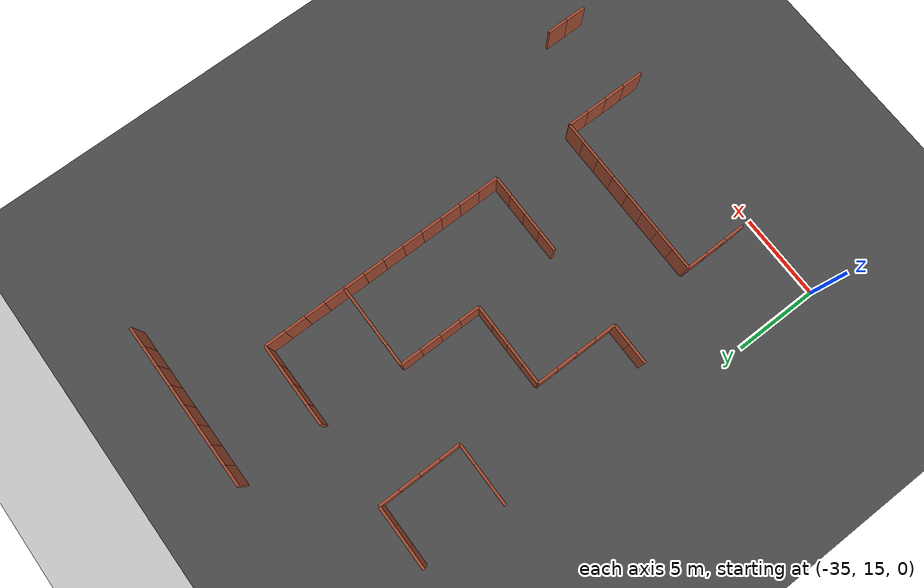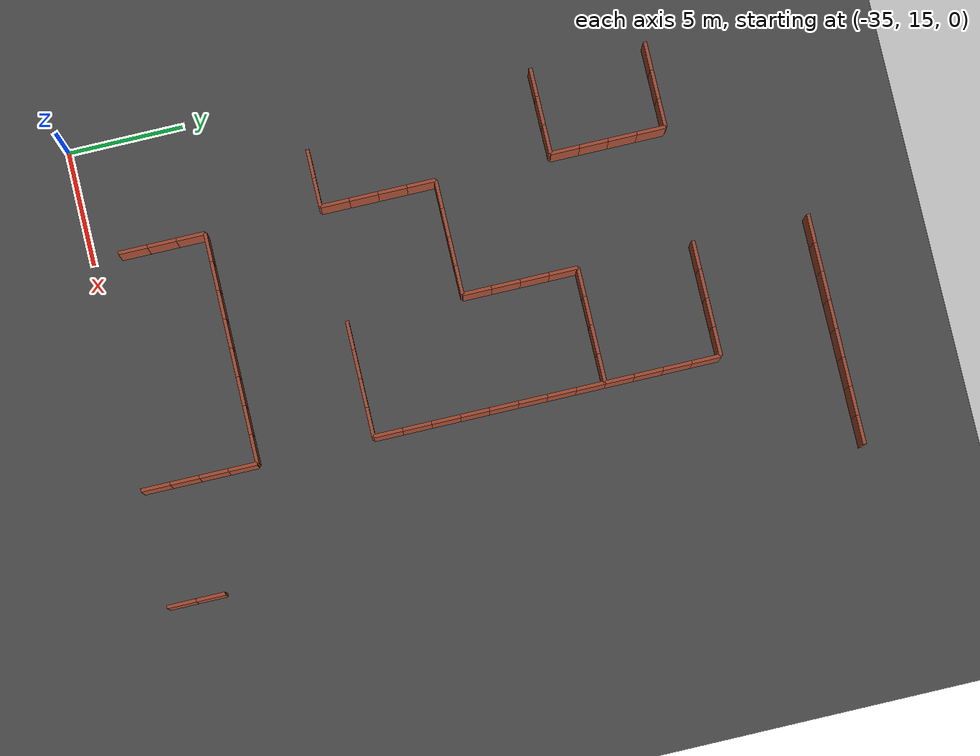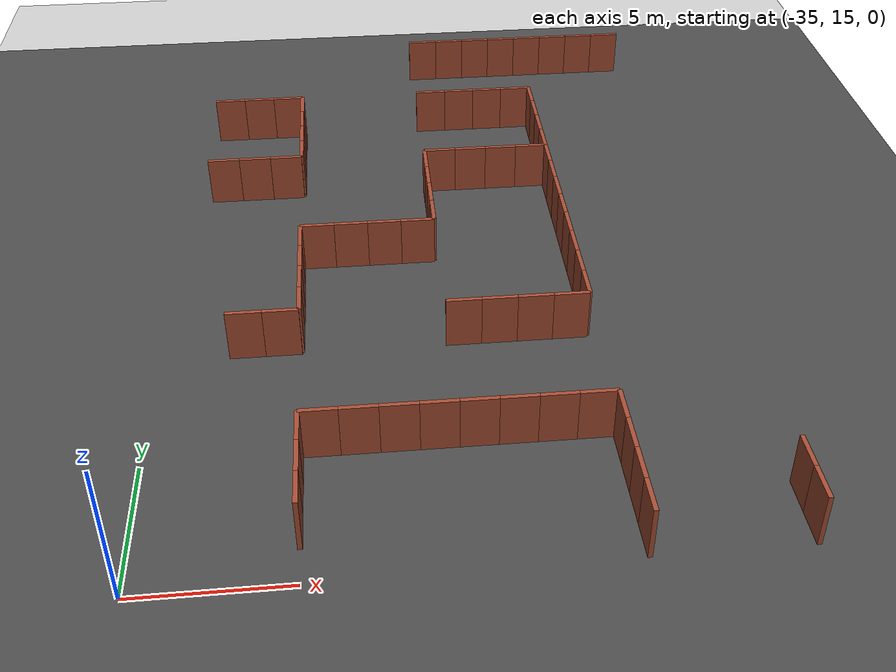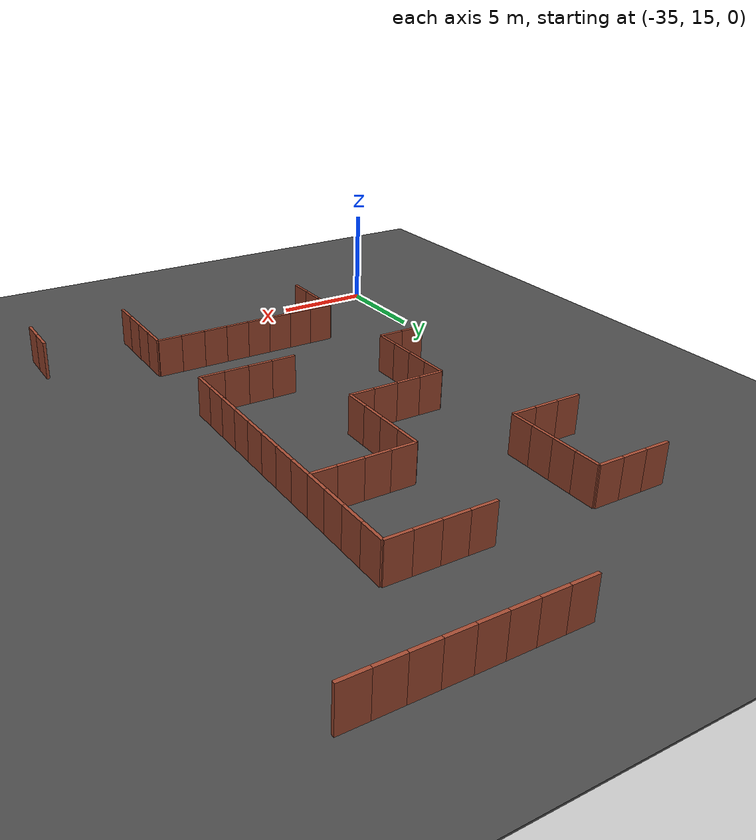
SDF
<sdf version="1.6">
 <world name="default">
  <model name="ground_plane">
   <static>1</static>
   <link name="link">
    <collision name="collision">
     <geometry><plane><normal>0 0 1</normal><size>100 100</size></plane></geometry>
     <surface><friction><ode><mu>100</mu><mu2>50</mu2></ode></friction></surface>
    </collision>
    <visual name="visual">
     <cast_shadows>0</cast_shadows>
     <geometry><plane><normal>0 0 1</normal><size>100 100</size></plane></geometry>
     <material>
      <script><uri>file://media/materials/scripts/gazebo.material</uri><name>Gazebo/Grey</name></script>
     </material>
    </visual>
   </link>
  </model>
  <model name="asphalt_plane">
   <static>1</static>
   <link name="link">
    <collision name="collision"><geometry><box><size>100 100 0.1</size></box></geometry></collision>
    <visual name="visual">
     <cast_shadows>0</cast_shadows>
     <geometry><box><size>100 100 0.1</size></box></geometry>
     <material>
      <script>
       <uri>model://asphalt_plane/materials/scripts</uri>
       <uri>model://asphalt_plane/materials/textures</uri>
       <name>vrc/asphalt</name>
      </script>
     </material>
    </visual>
   </link>
  </model>
  <model name="brick_wall_7_30_vertical1">
   <pose>-31.875 25 0 0 -0 0</pose>
   <link name="Wall_0">
    <collision name="Wall_0_Collision">
     <geometry><box><size>1.25 0.15 2</size></box></geometry>
     <pose>0 0 1 0 -0 0</pose>
    </collision>
    <visual name="Wall_0_Visual">
     <pose>0 0 1 0 -0 0</pose>
     <geometry><box><size>1.25 0.15 2</size></box></geometry>
     <material>
      <script><uri>file://media/materials/scripts/gazebo.material</uri><name>Gazebo/Bricks</name></script>
      <ambient>1 1 1 1</ambient>
     </material>
     <meta><layer>0</layer></meta>
    </visual>
   </link>
   <static>1</static>
  </model>
  <model name="brick_wall_7_34_vertical1">
   <pose>-31.875 35 0 0 -0 0</pose>
   <link name="Wall_0">
    <collision name="Wall_0_Collision">
     <geometry><box><size>1.25 0.15 2</size></box></geometry>
     <pose>0 0 1 0 -0 0</pose>
    </collision>
    <visual name="Wall_0_Visual">
     <pose>0 0 1 0 -0 0</pose>
     <geometry><box><size>1.25 0.15 2</size></box></geometry>
     <material>
      <script><uri>file://media/materials/scripts/gazebo.material</uri><name>Gazebo/Bricks</name></script>
      <ambient>1 1 1 1</ambient>
     </material>
     <meta><layer>0</layer></meta>
    </visual>
   </link>
   <static>1</static>
  </model>
  <model name="brick_wall_7_34_vertical2">
   <pose>-33.125 35 0 0 -0 0</pose>
   <link name="Wall_0">
    <collision name="Wall_0_Collision">
     <geometry><box><size>1.25 0.15 2</size></box></geometry>
     <pose>0 0 1 0 -0 0</pose>
    </collision>
    <visual name="Wall_0_Visual">
     <pose>0 0 1 0 -0 0</pose>
     <geometry><box><size>1.25 0.15 2</size></box></geometry>
     <material>
      <script><uri>file://media/materials/scripts/gazebo.material</uri><name>Gazebo/Bricks</name></script>
      <ambient>1 1 1 1</ambient>
     </material>
     <meta><layer>0</layer></meta>
    </visual>
   </link>
   <static>1</static>
  </model>
  <model name="brick_wall_7_36_vertical1">
   <pose>-31.875 40 0 0 -0 0</pose>
   <link name="Wall_0">
    <collision name="Wall_0_Collision">
     <geometry><box><size>1.25 0.15 2</size></box></geometry>
     <pose>0 0 1 0 -0 0</pose>
    </collision>
    <visual name="Wall_0_Visual">
     <pose>0 0 1 0 -0 0</pose>
     <geometry><box><size>1.25 0.15 2</size></box></geometry>
     <material>
      <script><uri>file://media/materials/scripts/gazebo.material</uri><name>Gazebo/Bricks</name></script>
      <ambient>1 1 1 1</ambient>
     </material>
     <meta><layer>0</layer></meta>
    </visual>
   </link>
   <static>1</static>
  </model>
  <model name="brick_wall_7_36_vertical2">
   <pose>-33.125 40 0 0 -0 0</pose>
   <link name="Wall_0">
    <collision name="Wall_0_Collision">
     <geometry><box><size>1.25 0.15 2</size></box></geometry>
     <pose>0 0 1 0 -0 0</pose>
    </collision>
    <visual name="Wall_0_Visual">
     <pose>0 0 1 0 -0 0</pose>
     <geometry><box><size>1.25 0.15 2</size></box></geometry>
     <material>
      <script><uri>file://media/materials/scripts/gazebo.material</uri><name>Gazebo/Bricks</name></script>
      <ambient>1 1 1 1</ambient>
     </material>
     <meta><layer>0</layer></meta>
    </visual>
   </link>
   <static>1</static>
  </model>
  <model name="brick_wall_8_27_horizontal1">
   <pose>-30 18.125 0 0 -0 1.5708</pose>
   <link name="Wall_0">
    <collision name="Wall_0_Collision">
     <geometry><box><size>1.25 0.15 2</size></box></geometry>
     <pose>0 0 1 0 -0 0</pose>
    </collision>
    <visual name="Wall_0_Visual">
     <pose>0 0 1 0 -0 0</pose>
     <geometry><box><size>1.25 0.15 2</size></box></geometry>
     <material>
      <script><uri>file://media/materials/scripts/gazebo.material</uri><name>Gazebo/Bricks</name></script>
      <ambient>1 1 1 1</ambient>
     </material>
     <meta><layer>0</layer></meta>
    </visual>
   </link>
   <static>1</static>
  </model>
  <model name="brick_wall_8_27_horizontal2">
   <pose>-30 16.875 0 0 -0 1.5708</pose>
   <link name="Wall_0">
    <collision name="Wall_0_Collision">
     <geometry><box><size>1.25 0.15 2</size></box></geometry>
     <pose>0 0 1 0 -0 0</pose>
    </collision>
    <visual name="Wall_0_Visual">
     <pose>0 0 1 0 -0 0</pose>
     <geometry><box><size>1.25 0.15 2</size></box></geometry>
     <material>
      <script><uri>file://media/materials/scripts/gazebo.material</uri><name>Gazebo/Bricks</name></script>
      <ambient>1 1 1 1</ambient>
     </material>
     <meta><layer>0</layer></meta>
    </visual>
   </link>
   <static>1</static>
  </model>
  <model name="brick_wall_8_28_vertical1">
   <pose>-29.375 20 0 0 -0 0</pose>
   <link name="Wall_0">
    <collision name="Wall_0_Collision">
     <geometry><box><size>1.25 0.15 2</size></box></geometry>
     <pose>0 0 1 0 -0 0</pose>
    </collision>
    <visual name="Wall_0_Visual">
     <pose>0 0 1 0 -0 0</pose>
     <geometry><box><size>1.25 0.15 2</size></box></geometry>
     <material>
      <script><uri>file://media/materials/scripts/gazebo.material</uri><name>Gazebo/Bricks</name></script>
      <ambient>1 1 1 1</ambient>
     </material>
     <meta><layer>0</layer></meta>
    </visual>
   </link>
   <static>1</static>
  </model>
  <model name="brick_wall_8_28_horizontal2">
   <pose>-30 19.375 0 0 -0 1.5708</pose>
   <link name="Wall_0">
    <collision name="Wall_0_Collision">
     <geometry><box><size>1.25 0.15 2</size></box></geometry>
     <pose>0 0 1 0 -0 0</pose>
    </collision>
    <visual name="Wall_0_Visual">
     <pose>0 0 1 0 -0 0</pose>
     <geometry><box><size>1.25 0.15 2</size></box></geometry>
     <material>
      <script><uri>file://media/materials/scripts/gazebo.material</uri><name>Gazebo/Bricks</name></script>
      <ambient>1 1 1 1</ambient>
     </material>
     <meta><layer>0</layer></meta>
    </visual>
   </link>
   <static>1</static>
  </model>
  <model name="brick_wall_8_30_vertical2">
   <pose>-30.625 25 0 0 -0 0</pose>
   <link name="Wall_0">
    <collision name="Wall_0_Collision">
     <geometry><box><size>1.25 0.15 2</size></box></geometry>
     <pose>0 0 1 0 -0 0</pose>
    </collision>
    <visual name="Wall_0_Visual">
     <pose>0 0 1 0 -0 0</pose>
     <geometry><box><size>1.25 0.15 2</size></box></geometry>
     <material>
      <script><uri>file://media/materials/scripts/gazebo.material</uri><name>Gazebo/Bricks</name></script>
      <ambient>1 1 1 1</ambient>
     </material>
     <meta><layer>0</layer></meta>
    </visual>
   </link>
   <static>1</static>
  </model>
  <model name="brick_wall_8_30_horizontal1">
   <pose>-30 25.625 0 0 -0 1.5708</pose>
   <link name="Wall_0">
    <collision name="Wall_0_Collision">
     <geometry><box><size>1.25 0.15 2</size></box></geometry>
     <pose>0 0 1 0 -0 0</pose>
    </collision>
    <visual name="Wall_0_Visual">
     <pose>0 0 1 0 -0 0</pose>
     <geometry><box><size>1.25 0.15 2</size></box></geometry>
     <material>
      <script><uri>file://media/materials/scripts/gazebo.material</uri><name>Gazebo/Bricks</name></script>
      <ambient>1 1 1 1</ambient>
     </material>
     <meta><layer>0</layer></meta>
    </visual>
   </link>
   <static>1</static>
  </model>
  <model name="brick_wall_8_31_horizontal1">
   <pose>-30 28.125 0 0 -0 1.5708</pose>
   <link name="Wall_0">
    <collision name="Wall_0_Collision">
     <geometry><box><size>1.25 0.15 2</size></box></geometry>
     <pose>0 0 1 0 -0 0</pose>
    </collision>
    <visual name="Wall_0_Visual">
     <pose>0 0 1 0 -0 0</pose>
     <geometry><box><size>1.25 0.15 2</size></box></geometry>
     <material>
      <script><uri>file://media/materials/scripts/gazebo.material</uri><name>Gazebo/Bricks</name></script>
      <ambient>1 1 1 1</ambient>
     </material>
     <meta><layer>0</layer></meta>
    </visual>
   </link>
   <static>1</static>
  </model>
  <model name="brick_wall_8_31_horizontal2">
   <pose>-30 26.875 0 0 -0 1.5708</pose>
   <link name="Wall_0">
    <collision name="Wall_0_Collision">
     <geometry><box><size>1.25 0.15 2</size></box></geometry>
     <pose>0 0 1 0 -0 0</pose>
    </collision>
    <visual name="Wall_0_Visual">
     <pose>0 0 1 0 -0 0</pose>
     <geometry><box><size>1.25 0.15 2</size></box></geometry>
     <material>
      <script><uri>file://media/materials/scripts/gazebo.material</uri><name>Gazebo/Bricks</name></script>
      <ambient>1 1 1 1</ambient>
     </material>
     <meta><layer>0</layer></meta>
    </visual>
   </link>
   <static>1</static>
  </model>
  <model name="brick_wall_8_32_vertical1">
   <pose>-29.375 30 0 0 -0 0</pose>
   <link name="Wall_0">
    <collision name="Wall_0_Collision">
     <geometry><box><size>1.25 0.15 2</size></box></geometry>
     <pose>0 0 1 0 -0 0</pose>
    </collision>
    <visual name="Wall_0_Visual">
     <pose>0 0 1 0 -0 0</pose>
     <geometry><box><size>1.25 0.15 2</size></box></geometry>
     <material>
      <script><uri>file://media/materials/scripts/gazebo.material</uri><name>Gazebo/Bricks</name></script>
      <ambient>1 1 1 1</ambient>
     </material>
     <meta><layer>0</layer></meta>
    </visual>
   </link>
   <static>1</static>
  </model>
  <model name="brick_wall_8_32_horizontal2">
   <pose>-30 29.375 0 0 -0 1.5708</pose>
   <link name="Wall_0">
    <collision name="Wall_0_Collision">
     <geometry><box><size>1.25 0.15 2</size></box></geometry>
     <pose>0 0 1 0 -0 0</pose>
    </collision>
    <visual name="Wall_0_Visual">
     <pose>0 0 1 0 -0 0</pose>
     <geometry><box><size>1.25 0.15 2</size></box></geometry>
     <material>
      <script><uri>file://media/materials/scripts/gazebo.material</uri><name>Gazebo/Bricks</name></script>
      <ambient>1 1 1 1</ambient>
     </material>
     <meta><layer>0</layer></meta>
    </visual>
   </link>
   <static>1</static>
  </model>
  <model name="brick_wall_8_34_vertical2">
   <pose>-30.625 35 0 0 -0 0</pose>
   <link name="Wall_0">
    <collision name="Wall_0_Collision">
     <geometry><box><size>1.25 0.15 2</size></box></geometry>
     <pose>0 0 1 0 -0 0</pose>
    </collision>
    <visual name="Wall_0_Visual">
     <pose>0 0 1 0 -0 0</pose>
     <geometry><box><size>1.25 0.15 2</size></box></geometry>
     <material>
      <script><uri>file://media/materials/scripts/gazebo.material</uri><name>Gazebo/Bricks</name></script>
      <ambient>1 1 1 1</ambient>
     </material>
     <meta><layer>0</layer></meta>
    </visual>
   </link>
   <static>1</static>
  </model>
  <model name="brick_wall_8_34_horizontal1">
   <pose>-30 35.625 0 0 -0 1.5708</pose>
   <link name="Wall_0">
    <collision name="Wall_0_Collision">
     <geometry><box><size>1.25 0.15 2</size></box></geometry>
     <pose>0 0 1 0 -0 0</pose>
    </collision>
    <visual name="Wall_0_Visual">
     <pose>0 0 1 0 -0 0</pose>
     <geometry><box><size>1.25 0.15 2</size></box></geometry>
     <material>
      <script><uri>file://media/materials/scripts/gazebo.material</uri><name>Gazebo/Bricks</name></script>
      <ambient>1 1 1 1</ambient>
     </material>
     <meta><layer>0</layer></meta>
    </visual>
   </link>
   <static>1</static>
  </model>
  <model name="brick_wall_8_35_horizontal1">
   <pose>-30 38.125 0 0 -0 1.5708</pose>
   <link name="Wall_0">
    <collision name="Wall_0_Collision">
     <geometry><box><size>1.25 0.15 2</size></box></geometry>
     <pose>0 0 1 0 -0 0</pose>
    </collision>
    <visual name="Wall_0_Visual">
     <pose>0 0 1 0 -0 0</pose>
     <geometry><box><size>1.25 0.15 2</size></box></geometry>
     <material>
      <script><uri>file://media/materials/scripts/gazebo.material</uri><name>Gazebo/Bricks</name></script>
      <ambient>1 1 1 1</ambient>
     </material>
     <meta><layer>0</layer></meta>
    </visual>
   </link>
   <static>1</static>
  </model>
  <model name="brick_wall_8_35_horizontal2">
   <pose>-30 36.875 0 0 -0 1.5708</pose>
   <link name="Wall_0">
    <collision name="Wall_0_Collision">
     <geometry><box><size>1.25 0.15 2</size></box></geometry>
     <pose>0 0 1 0 -0 0</pose>
    </collision>
    <visual name="Wall_0_Visual">
     <pose>0 0 1 0 -0 0</pose>
     <geometry><box><size>1.25 0.15 2</size></box></geometry>
     <material>
      <script><uri>file://media/materials/scripts/gazebo.material</uri><name>Gazebo/Bricks</name></script>
      <ambient>1 1 1 1</ambient>
     </material>
     <meta><layer>0</layer></meta>
    </visual>
   </link>
   <static>1</static>
  </model>
  <model name="brick_wall_8_36_vertical2">
   <pose>-30.625 40 0 0 -0 0</pose>
   <link name="Wall_0">
    <collision name="Wall_0_Collision">
     <geometry><box><size>1.25 0.15 2</size></box></geometry>
     <pose>0 0 1 0 -0 0</pose>
    </collision>
    <visual name="Wall_0_Visual">
     <pose>0 0 1 0 -0 0</pose>
     <geometry><box><size>1.25 0.15 2</size></box></geometry>
     <material>
      <script><uri>file://media/materials/scripts/gazebo.material</uri><name>Gazebo/Bricks</name></script>
      <ambient>1 1 1 1</ambient>
     </material>
     <meta><layer>0</layer></meta>
    </visual>
   </link>
   <static>1</static>
  </model>
  <model name="brick_wall_8_36_horizontal2">
   <pose>-30 39.375 0 0 -0 1.5708</pose>
   <link name="Wall_0">
    <collision name="Wall_0_Collision">
     <geometry><box><size>1.25 0.15 2</size></box></geometry>
     <pose>0 0 1 0 -0 0</pose>
    </collision>
    <visual name="Wall_0_Visual">
     <pose>0 0 1 0 -0 0</pose>
     <geometry><box><size>1.25 0.15 2</size></box></geometry>
     <material>
      <script><uri>file://media/materials/scripts/gazebo.material</uri><name>Gazebo/Bricks</name></script>
      <ambient>1 1 1 1</ambient>
     </material>
     <meta><layer>0</layer></meta>
    </visual>
   </link>
   <static>1</static>
  </model>
  <model name="brick_wall_9_28_vertical1">
   <pose>-26.875 20 0 0 -0 0</pose>
   <link name="Wall_0">
    <collision name="Wall_0_Collision">
     <geometry><box><size>1.25 0.15 2</size></box></geometry>
     <pose>0 0 1 0 -0 0</pose>
    </collision>
    <visual name="Wall_0_Visual">
     <pose>0 0 1 0 -0 0</pose>
     <geometry><box><size>1.25 0.15 2</size></box></geometry>
     <material>
      <script><uri>file://media/materials/scripts/gazebo.material</uri><name>Gazebo/Bricks</name></script>
      <ambient>1 1 1 1</ambient>
     </material>
     <meta><layer>0</layer></meta>
    </visual>
   </link>
   <static>1</static>
  </model>
  <model name="brick_wall_9_28_vertical2">
   <pose>-28.125 20 0 0 -0 0</pose>
   <link name="Wall_0">
    <collision name="Wall_0_Collision">
     <geometry><box><size>1.25 0.15 2</size></box></geometry>
     <pose>0 0 1 0 -0 0</pose>
    </collision>
    <visual name="Wall_0_Visual">
     <pose>0 0 1 0 -0 0</pose>
     <geometry><box><size>1.25 0.15 2</size></box></geometry>
     <material>
      <script><uri>file://media/materials/scripts/gazebo.material</uri><name>Gazebo/Bricks</name></script>
      <ambient>1 1 1 1</ambient>
     </material>
     <meta><layer>0</layer></meta>
    </visual>
   </link>
   <static>1</static>
  </model>
  <model name="brick_wall_9_32_vertical1">
   <pose>-26.875 30 0 0 -0 0</pose>
   <link name="Wall_0">
    <collision name="Wall_0_Collision">
     <geometry><box><size>1.25 0.15 2</size></box></geometry>
     <pose>0 0 1 0 -0 0</pose>
    </collision>
    <visual name="Wall_0_Visual">
     <pose>0 0 1 0 -0 0</pose>
     <geometry><box><size>1.25 0.15 2</size></box></geometry>
     <material>
      <script><uri>file://media/materials/scripts/gazebo.material</uri><name>Gazebo/Bricks</name></script>
      <ambient>1 1 1 1</ambient>
     </material>
     <meta><layer>0</layer></meta>
    </visual>
   </link>
   <static>1</static>
  </model>
  <model name="brick_wall_9_32_vertical2">
   <pose>-28.125 30 0 0 -0 0</pose>
   <link name="Wall_0">
    <collision name="Wall_0_Collision">
     <geometry><box><size>1.25 0.15 2</size></box></geometry>
     <pose>0 0 1 0 -0 0</pose>
    </collision>
    <visual name="Wall_0_Visual">
     <pose>0 0 1 0 -0 0</pose>
     <geometry><box><size>1.25 0.15 2</size></box></geometry>
     <material>
      <script><uri>file://media/materials/scripts/gazebo.material</uri><name>Gazebo/Bricks</name></script>
      <ambient>1 1 1 1</ambient>
     </material>
     <meta><layer>0</layer></meta>
    </visual>
   </link>
   <static>1</static>
  </model>
  <model name="brick_wall_10_28_vertical1">
   <pose>-24.375 20 0 0 -0 0</pose>
   <link name="Wall_0">
    <collision name="Wall_0_Collision">
     <geometry><box><size>1.25 0.15 2</size></box></geometry>
     <pose>0 0 1 0 -0 0</pose>
    </collision>
    <visual name="Wall_0_Visual">
     <pose>0 0 1 0 -0 0</pose>
     <geometry><box><size>1.25 0.15 2</size></box></geometry>
     <material>
      <script><uri>file://media/materials/scripts/gazebo.material</uri><name>Gazebo/Bricks</name></script>
      <ambient>1 1 1 1</ambient>
     </material>
     <meta><layer>0</layer></meta>
    </visual>
   </link>
   <static>1</static>
  </model>
  <model name="brick_wall_10_28_vertical2">
   <pose>-25.625 20 0 0 -0 0</pose>
   <link name="Wall_0">
    <collision name="Wall_0_Collision">
     <geometry><box><size>1.25 0.15 2</size></box></geometry>
     <pose>0 0 1 0 -0 0</pose>
    </collision>
    <visual name="Wall_0_Visual">
     <pose>0 0 1 0 -0 0</pose>
     <geometry><box><size>1.25 0.15 2</size></box></geometry>
     <material>
      <script><uri>file://media/materials/scripts/gazebo.material</uri><name>Gazebo/Bricks</name></script>
      <ambient>1 1 1 1</ambient>
     </material>
     <meta><layer>0</layer></meta>
    </visual>
   </link>
   <static>1</static>
  </model>
  <model name="brick_wall_10_30_vertical1">
   <pose>-24.375 25 0 0 -0 0</pose>
   <link name="Wall_0">
    <collision name="Wall_0_Collision">
     <geometry><box><size>1.25 0.15 2</size></box></geometry>
     <pose>0 0 1 0 -0 0</pose>
    </collision>
    <visual name="Wall_0_Visual">
     <pose>0 0 1 0 -0 0</pose>
     <geometry><box><size>1.25 0.15 2</size></box></geometry>
     <material>
      <script><uri>file://media/materials/scripts/gazebo.material</uri><name>Gazebo/Bricks</name></script>
      <ambient>1 1 1 1</ambient>
     </material>
     <meta><layer>0</layer></meta>
    </visual>
   </link>
   <static>1</static>
  </model>
  <model name="brick_wall_10_32_vertical2">
   <pose>-25.625 30 0 0 -0 0</pose>
   <link name="Wall_0">
    <collision name="Wall_0_Collision">
     <geometry><box><size>1.25 0.15 2</size></box></geometry>
     <pose>0 0 1 0 -0 0</pose>
    </collision>
    <visual name="Wall_0_Visual">
     <pose>0 0 1 0 -0 0</pose>
     <geometry><box><size>1.25 0.15 2</size></box></geometry>
     <material>
      <script><uri>file://media/materials/scripts/gazebo.material</uri><name>Gazebo/Bricks</name></script>
      <ambient>1 1 1 1</ambient>
     </material>
     <meta><layer>0</layer></meta>
    </visual>
   </link>
   <static>1</static>
  </model>
  <model name="brick_wall_10_32_horizontal1">
   <pose>-25 30.625 0 0 -0 1.5708</pose>
   <link name="Wall_0">
    <collision name="Wall_0_Collision">
     <geometry><box><size>1.25 0.15 2</size></box></geometry>
     <pose>0 0 1 0 -0 0</pose>
    </collision>
    <visual name="Wall_0_Visual">
     <pose>0 0 1 0 -0 0</pose>
     <geometry><box><size>1.25 0.15 2</size></box></geometry>
     <material>
      <script><uri>file://media/materials/scripts/gazebo.material</uri><name>Gazebo/Bricks</name></script>
      <ambient>1 1 1 1</ambient>
     </material>
     <meta><layer>0</layer></meta>
    </visual>
   </link>
   <static>1</static>
  </model>
  <model name="brick_wall_10_33_horizontal1">
   <pose>-25 33.125 0 0 -0 1.5708</pose>
   <link name="Wall_0">
    <collision name="Wall_0_Collision">
     <geometry><box><size>1.25 0.15 2</size></box></geometry>
     <pose>0 0 1 0 -0 0</pose>
    </collision>
    <visual name="Wall_0_Visual">
     <pose>0 0 1 0 -0 0</pose>
     <geometry><box><size>1.25 0.15 2</size></box></geometry>
     <material>
      <script><uri>file://media/materials/scripts/gazebo.material</uri><name>Gazebo/Bricks</name></script>
      <ambient>1 1 1 1</ambient>
     </material>
     <meta><layer>0</layer></meta>
    </visual>
   </link>
   <static>1</static>
  </model>
  <model name="brick_wall_10_33_horizontal2">
   <pose>-25 31.875 0 0 -0 1.5708</pose>
   <link name="Wall_0">
    <collision name="Wall_0_Collision">
     <geometry><box><size>1.25 0.15 2</size></box></geometry>
     <pose>0 0 1 0 -0 0</pose>
    </collision>
    <visual name="Wall_0_Visual">
     <pose>0 0 1 0 -0 0</pose>
     <geometry><box><size>1.25 0.15 2</size></box></geometry>
     <material>
      <script><uri>file://media/materials/scripts/gazebo.material</uri><name>Gazebo/Bricks</name></script>
      <ambient>1 1 1 1</ambient>
     </material>
     <meta><layer>0</layer></meta>
    </visual>
   </link>
   <static>1</static>
  </model>
  <model name="brick_wall_10_34_vertical1">
   <pose>-24.375 35 0 0 -0 0</pose>
   <link name="Wall_0">
    <collision name="Wall_0_Collision">
     <geometry><box><size>1.25 0.15 2</size></box></geometry>
     <pose>0 0 1 0 -0 0</pose>
    </collision>
    <visual name="Wall_0_Visual">
     <pose>0 0 1 0 -0 0</pose>
     <geometry><box><size>1.25 0.15 2</size></box></geometry>
     <material>
      <script><uri>file://media/materials/scripts/gazebo.material</uri><name>Gazebo/Bricks</name></script>
      <ambient>1 1 1 1</ambient>
     </material>
     <meta><layer>0</layer></meta>
    </visual>
   </link>
   <static>1</static>
  </model>
  <model name="brick_wall_10_34_horizontal2">
   <pose>-25 34.375 0 0 -0 1.5708</pose>
   <link name="Wall_0">
    <collision name="Wall_0_Collision">
     <geometry><box><size>1.25 0.15 2</size></box></geometry>
     <pose>0 0 1 0 -0 0</pose>
    </collision>
    <visual name="Wall_0_Visual">
     <pose>0 0 1 0 -0 0</pose>
     <geometry><box><size>1.25 0.15 2</size></box></geometry>
     <material>
      <script><uri>file://media/materials/scripts/gazebo.material</uri><name>Gazebo/Bricks</name></script>
      <ambient>1 1 1 1</ambient>
     </material>
     <meta><layer>0</layer></meta>
    </visual>
   </link>
   <static>1</static>
  </model>
  <model name="brick_wall_10_36_vertical1">
   <pose>-24.375 40 0 0 -0 0</pose>
   <link name="Wall_0">
    <collision name="Wall_0_Collision">
     <geometry><box><size>1.25 0.15 2</size></box></geometry>
     <pose>0 0 1 0 -0 0</pose>
    </collision>
    <visual name="Wall_0_Visual">
     <pose>0 0 1 0 -0 0</pose>
     <geometry><box><size>1.25 0.15 2</size></box></geometry>
     <material>
      <script><uri>file://media/materials/scripts/gazebo.material</uri><name>Gazebo/Bricks</name></script>
      <ambient>1 1 1 1</ambient>
     </material>
     <meta><layer>0</layer></meta>
    </visual>
   </link>
   <static>1</static>
  </model>
  <model name="brick_wall_10_38_vertical1">
   <pose>-24.375 45 0 0 -0 0</pose>
   <link name="Wall_0">
    <collision name="Wall_0_Collision">
     <geometry><box><size>1.25 0.15 2</size></box></geometry>
     <pose>0 0 1 0 -0 0</pose>
    </collision>
    <visual name="Wall_0_Visual">
     <pose>0 0 1 0 -0 0</pose>
     <geometry><box><size>1.25 0.15 2</size></box></geometry>
     <material>
      <script><uri>file://media/materials/scripts/gazebo.material</uri><name>Gazebo/Bricks</name></script>
      <ambient>1 1 1 1</ambient>
     </material>
     <meta><layer>0</layer></meta>
    </visual>
   </link>
   <static>1</static>
  </model>
  <model name="brick_wall_11_28_vertical1">
   <pose>-21.875 20 0 0 -0 0</pose>
   <link name="Wall_0">
    <collision name="Wall_0_Collision">
     <geometry><box><size>1.25 0.15 2</size></box></geometry>
     <pose>0 0 1 0 -0 0</pose>
    </collision>
    <visual name="Wall_0_Visual">
     <pose>0 0 1 0 -0 0</pose>
     <geometry><box><size>1.25 0.15 2</size></box></geometry>
     <material>
      <script><uri>file://media/materials/scripts/gazebo.material</uri><name>Gazebo/Bricks</name></script>
      <ambient>1 1 1 1</ambient>
     </material>
     <meta><layer>0</layer></meta>
    </visual>
   </link>
   <static>1</static>
  </model>
  <model name="brick_wall_11_28_vertical2">
   <pose>-23.125 20 0 0 -0 0</pose>
   <link name="Wall_0">
    <collision name="Wall_0_Collision">
     <geometry><box><size>1.25 0.15 2</size></box></geometry>
     <pose>0 0 1 0 -0 0</pose>
    </collision>
    <visual name="Wall_0_Visual">
     <pose>0 0 1 0 -0 0</pose>
     <geometry><box><size>1.25 0.15 2</size></box></geometry>
     <material>
      <script><uri>file://media/materials/scripts/gazebo.material</uri><name>Gazebo/Bricks</name></script>
      <ambient>1 1 1 1</ambient>
     </material>
     <meta><layer>0</layer></meta>
    </visual>
   </link>
   <static>1</static>
  </model>
  <model name="brick_wall_11_30_vertical1">
   <pose>-21.875 25 0 0 -0 0</pose>
   <link name="Wall_0">
    <collision name="Wall_0_Collision">
     <geometry><box><size>1.25 0.15 2</size></box></geometry>
     <pose>0 0 1 0 -0 0</pose>
    </collision>
    <visual name="Wall_0_Visual">
     <pose>0 0 1 0 -0 0</pose>
     <geometry><box><size>1.25 0.15 2</size></box></geometry>
     <material>
      <script><uri>file://media/materials/scripts/gazebo.material</uri><name>Gazebo/Bricks</name></script>
      <ambient>1 1 1 1</ambient>
     </material>
     <meta><layer>0</layer></meta>
    </visual>
   </link>
   <static>1</static>
  </model>
  <model name="brick_wall_11_30_vertical2">
   <pose>-23.125 25 0 0 -0 0</pose>
   <link name="Wall_0">
    <collision name="Wall_0_Collision">
     <geometry><box><size>1.25 0.15 2</size></box></geometry>
     <pose>0 0 1 0 -0 0</pose>
    </collision>
    <visual name="Wall_0_Visual">
     <pose>0 0 1 0 -0 0</pose>
     <geometry><box><size>1.25 0.15 2</size></box></geometry>
     <material>
      <script><uri>file://media/materials/scripts/gazebo.material</uri><name>Gazebo/Bricks</name></script>
      <ambient>1 1 1 1</ambient>
     </material>
     <meta><layer>0</layer></meta>
    </visual>
   </link>
   <static>1</static>
  </model>
  <model name="brick_wall_11_34_vertical1">
   <pose>-21.875 35 0 0 -0 0</pose>
   <link name="Wall_0">
    <collision name="Wall_0_Collision">
     <geometry><box><size>1.25 0.15 2</size></box></geometry>
     <pose>0 0 1 0 -0 0</pose>
    </collision>
    <visual name="Wall_0_Visual">
     <pose>0 0 1 0 -0 0</pose>
     <geometry><box><size>1.25 0.15 2</size></box></geometry>
     <material>
      <script><uri>file://media/materials/scripts/gazebo.material</uri><name>Gazebo/Bricks</name></script>
      <ambient>1 1 1 1</ambient>
     </material>
     <meta><layer>0</layer></meta>
    </visual>
   </link>
   <static>1</static>
  </model>
  <model name="brick_wall_11_34_vertical2">
   <pose>-23.125 35 0 0 -0 0</pose>
   <link name="Wall_0">
    <collision name="Wall_0_Collision">
     <geometry><box><size>1.25 0.15 2</size></box></geometry>
     <pose>0 0 1 0 -0 0</pose>
    </collision>
    <visual name="Wall_0_Visual">
     <pose>0 0 1 0 -0 0</pose>
     <geometry><box><size>1.25 0.15 2</size></box></geometry>
     <material>
      <script><uri>file://media/materials/scripts/gazebo.material</uri><name>Gazebo/Bricks</name></script>
      <ambient>1 1 1 1</ambient>
     </material>
     <meta><layer>0</layer></meta>
    </visual>
   </link>
   <static>1</static>
  </model>
  <model name="brick_wall_11_36_vertical1">
   <pose>-21.875 40 0 0 -0 0</pose>
   <link name="Wall_0">
    <collision name="Wall_0_Collision">
     <geometry><box><size>1.25 0.15 2</size></box></geometry>
     <pose>0 0 1 0 -0 0</pose>
    </collision>
    <visual name="Wall_0_Visual">
     <pose>0 0 1 0 -0 0</pose>
     <geometry><box><size>1.25 0.15 2</size></box></geometry>
     <material>
      <script><uri>file://media/materials/scripts/gazebo.material</uri><name>Gazebo/Bricks</name></script>
      <ambient>1 1 1 1</ambient>
     </material>
     <meta><layer>0</layer></meta>
    </visual>
   </link>
   <static>1</static>
  </model>
  <model name="brick_wall_11_36_vertical2">
   <pose>-23.125 40 0 0 -0 0</pose>
   <link name="Wall_0">
    <collision name="Wall_0_Collision">
     <geometry><box><size>1.25 0.15 2</size></box></geometry>
     <pose>0 0 1 0 -0 0</pose>
    </collision>
    <visual name="Wall_0_Visual">
     <pose>0 0 1 0 -0 0</pose>
     <geometry><box><size>1.25 0.15 2</size></box></geometry>
     <material>
      <script><uri>file://media/materials/scripts/gazebo.material</uri><name>Gazebo/Bricks</name></script>
      <ambient>1 1 1 1</ambient>
     </material>
     <meta><layer>0</layer></meta>
    </visual>
   </link>
   <static>1</static>
  </model>
  <model name="brick_wall_11_38_vertical1">
   <pose>-21.875 45 0 0 -0 0</pose>
   <link name="Wall_0">
    <collision name="Wall_0_Collision">
     <geometry><box><size>1.25 0.15 2</size></box></geometry>
     <pose>0 0 1 0 -0 0</pose>
    </collision>
    <visual name="Wall_0_Visual">
     <pose>0 0 1 0 -0 0</pose>
     <geometry><box><size>1.25 0.15 2</size></box></geometry>
     <material>
      <script><uri>file://media/materials/scripts/gazebo.material</uri><name>Gazebo/Bricks</name></script>
      <ambient>1 1 1 1</ambient>
     </material>
     <meta><layer>0</layer></meta>
    </visual>
   </link>
   <static>1</static>
  </model>
  <model name="brick_wall_11_38_vertical2">
   <pose>-23.125 45 0 0 -0 0</pose>
   <link name="Wall_0">
    <collision name="Wall_0_Collision">
     <geometry><box><size>1.25 0.15 2</size></box></geometry>
     <pose>0 0 1 0 -0 0</pose>
    </collision>
    <visual name="Wall_0_Visual">
     <pose>0 0 1 0 -0 0</pose>
     <geometry><box><size>1.25 0.15 2</size></box></geometry>
     <material>
      <script><uri>file://media/materials/scripts/gazebo.material</uri><name>Gazebo/Bricks</name></script>
      <ambient>1 1 1 1</ambient>
     </material>
     <meta><layer>0</layer></meta>
    </visual>
   </link>
   <static>1</static>
  </model>
  <model name="brick_wall_12_26_horizontal1">
   <pose>-20 15.625 0 0 -0 1.5708</pose>
   <link name="Wall_0">
    <collision name="Wall_0_Collision">
     <geometry><box><size>1.25 0.15 2</size></box></geometry>
     <pose>0 0 1 0 -0 0</pose>
    </collision>
    <visual name="Wall_0_Visual">
     <pose>0 0 1 0 -0 0</pose>
     <geometry><box><size>1.25 0.15 2</size></box></geometry>
     <material>
      <script><uri>file://media/materials/scripts/gazebo.material</uri><name>Gazebo/Bricks</name></script>
      <ambient>1 1 1 1</ambient>
     </material>
     <meta><layer>0</layer></meta>
    </visual>
   </link>
   <static>1</static>
  </model>
  <model name="brick_wall_12_27_horizontal1">
   <pose>-20 18.125 0 0 -0 1.5708</pose>
   <link name="Wall_0">
    <collision name="Wall_0_Collision">
     <geometry><box><size>1.25 0.15 2</size></box></geometry>
     <pose>0 0 1 0 -0 0</pose>
    </collision>
    <visual name="Wall_0_Visual">
     <pose>0 0 1 0 -0 0</pose>
     <geometry><box><size>1.25 0.15 2</size></box></geometry>
     <material>
      <script><uri>file://media/materials/scripts/gazebo.material</uri><name>Gazebo/Bricks</name></script>
      <ambient>1 1 1 1</ambient>
     </material>
     <meta><layer>0</layer></meta>
    </visual>
   </link>
   <static>1</static>
  </model>
  <model name="brick_wall_12_27_horizontal2">
   <pose>-20 16.875 0 0 -0 1.5708</pose>
   <link name="Wall_0">
    <collision name="Wall_0_Collision">
     <geometry><box><size>1.25 0.15 2</size></box></geometry>
     <pose>0 0 1 0 -0 0</pose>
    </collision>
    <visual name="Wall_0_Visual">
     <pose>0 0 1 0 -0 0</pose>
     <geometry><box><size>1.25 0.15 2</size></box></geometry>
     <material>
      <script><uri>file://media/materials/scripts/gazebo.material</uri><name>Gazebo/Bricks</name></script>
      <ambient>1 1 1 1</ambient>
     </material>
     <meta><layer>0</layer></meta>
    </visual>
   </link>
   <static>1</static>
  </model>
  <model name="brick_wall_12_28_vertical2">
   <pose>-20.625 20 0 0 -0 0</pose>
   <link name="Wall_0">
    <collision name="Wall_0_Collision">
     <geometry><box><size>1.25 0.15 2</size></box></geometry>
     <pose>0 0 1 0 -0 0</pose>
    </collision>
    <visual name="Wall_0_Visual">
     <pose>0 0 1 0 -0 0</pose>
     <geometry><box><size>1.25 0.15 2</size></box></geometry>
     <material>
      <script><uri>file://media/materials/scripts/gazebo.material</uri><name>Gazebo/Bricks</name></script>
      <ambient>1 1 1 1</ambient>
     </material>
     <meta><layer>0</layer></meta>
    </visual>
   </link>
   <static>1</static>
  </model>
  <model name="brick_wall_12_28_horizontal2">
   <pose>-20 19.375 0 0 -0 1.5708</pose>
   <link name="Wall_0">
    <collision name="Wall_0_Collision">
     <geometry><box><size>1.25 0.15 2</size></box></geometry>
     <pose>0 0 1 0 -0 0</pose>
    </collision>
    <visual name="Wall_0_Visual">
     <pose>0 0 1 0 -0 0</pose>
     <geometry><box><size>1.25 0.15 2</size></box></geometry>
     <material>
      <script><uri>file://media/materials/scripts/gazebo.material</uri><name>Gazebo/Bricks</name></script>
      <ambient>1 1 1 1</ambient>
     </material>
     <meta><layer>0</layer></meta>
    </visual>
   </link>
   <static>1</static>
  </model>
  <model name="brick_wall_12_30_vertical2">
   <pose>-20.625 25 0 0 -0 0</pose>
   <link name="Wall_0">
    <collision name="Wall_0_Collision">
     <geometry><box><size>1.25 0.15 2</size></box></geometry>
     <pose>0 0 1 0 -0 0</pose>
    </collision>
    <visual name="Wall_0_Visual">
     <pose>0 0 1 0 -0 0</pose>
     <geometry><box><size>1.25 0.15 2</size></box></geometry>
     <material>
      <script><uri>file://media/materials/scripts/gazebo.material</uri><name>Gazebo/Bricks</name></script>
      <ambient>1 1 1 1</ambient>
     </material>
     <meta><layer>0</layer></meta>
    </visual>
   </link>
   <static>1</static>
  </model>
  <model name="brick_wall_12_30_horizontal1">
   <pose>-20 25.625 0 0 -0 1.5708</pose>
   <link name="Wall_0">
    <collision name="Wall_0_Collision">
     <geometry><box><size>1.25 0.15 2</size></box></geometry>
     <pose>0 0 1 0 -0 0</pose>
    </collision>
    <visual name="Wall_0_Visual">
     <pose>0 0 1 0 -0 0</pose>
     <geometry><box><size>1.25 0.15 2</size></box></geometry>
     <material>
      <script><uri>file://media/materials/scripts/gazebo.material</uri><name>Gazebo/Bricks</name></script>
      <ambient>1 1 1 1</ambient>
     </material>
     <meta><layer>0</layer></meta>
    </visual>
   </link>
   <static>1</static>
  </model>
  <model name="brick_wall_12_31_horizontal1">
   <pose>-20 28.125 0 0 -0 1.5708</pose>
   <link name="Wall_0">
    <collision name="Wall_0_Collision">
     <geometry><box><size>1.25 0.15 2</size></box></geometry>
     <pose>0 0 1 0 -0 0</pose>
    </collision>
    <visual name="Wall_0_Visual">
     <pose>0 0 1 0 -0 0</pose>
     <geometry><box><size>1.25 0.15 2</size></box></geometry>
     <material>
      <script><uri>file://media/materials/scripts/gazebo.material</uri><name>Gazebo/Bricks</name></script>
      <ambient>1 1 1 1</ambient>
     </material>
     <meta><layer>0</layer></meta>
    </visual>
   </link>
   <static>1</static>
  </model>
  <model name="brick_wall_12_31_horizontal2">
   <pose>-20 26.875 0 0 -0 1.5708</pose>
   <link name="Wall_0">
    <collision name="Wall_0_Collision">
     <geometry><box><size>1.25 0.15 2</size></box></geometry>
     <pose>0 0 1 0 -0 0</pose>
    </collision>
    <visual name="Wall_0_Visual">
     <pose>0 0 1 0 -0 0</pose>
     <geometry><box><size>1.25 0.15 2</size></box></geometry>
     <material>
      <script><uri>file://media/materials/scripts/gazebo.material</uri><name>Gazebo/Bricks</name></script>
      <ambient>1 1 1 1</ambient>
     </material>
     <meta><layer>0</layer></meta>
    </visual>
   </link>
   <static>1</static>
  </model>
  <model name="brick_wall_12_32_horizontal1">
   <pose>-20 30.625 0 0 -0 1.5708</pose>
   <link name="Wall_0">
    <collision name="Wall_0_Collision">
     <geometry><box><size>1.25 0.15 2</size></box></geometry>
     <pose>0 0 1 0 -0 0</pose>
    </collision>
    <visual name="Wall_0_Visual">
     <pose>0 0 1 0 -0 0</pose>
     <geometry><box><size>1.25 0.15 2</size></box></geometry>
     <material>
      <script><uri>file://media/materials/scripts/gazebo.material</uri><name>Gazebo/Bricks</name></script>
      <ambient>1 1 1 1</ambient>
     </material>
     <meta><layer>0</layer></meta>
    </visual>
   </link>
   <static>1</static>
  </model>
  <model name="brick_wall_12_32_horizontal2">
   <pose>-20 29.375 0 0 -0 1.5708</pose>
   <link name="Wall_0">
    <collision name="Wall_0_Collision">
     <geometry><box><size>1.25 0.15 2</size></box></geometry>
     <pose>0 0 1 0 -0 0</pose>
    </collision>
    <visual name="Wall_0_Visual">
     <pose>0 0 1 0 -0 0</pose>
     <geometry><box><size>1.25 0.15 2</size></box></geometry>
     <material>
      <script><uri>file://media/materials/scripts/gazebo.material</uri><name>Gazebo/Bricks</name></script>
      <ambient>1 1 1 1</ambient>
     </material>
     <meta><layer>0</layer></meta>
    </visual>
   </link>
   <static>1</static>
  </model>
  <model name="brick_wall_12_33_horizontal1">
   <pose>-20 33.125 0 0 -0 1.5708</pose>
   <link name="Wall_0">
    <collision name="Wall_0_Collision">
     <geometry><box><size>1.25 0.15 2</size></box></geometry>
     <pose>0 0 1 0 -0 0</pose>
    </collision>
    <visual name="Wall_0_Visual">
     <pose>0 0 1 0 -0 0</pose>
     <geometry><box><size>1.25 0.15 2</size></box></geometry>
     <material>
      <script><uri>file://media/materials/scripts/gazebo.material</uri><name>Gazebo/Bricks</name></script>
      <ambient>1 1 1 1</ambient>
     </material>
     <meta><layer>0</layer></meta>
    </visual>
   </link>
   <static>1</static>
  </model>
  <model name="brick_wall_12_33_horizontal2">
   <pose>-20 31.875 0 0 -0 1.5708</pose>
   <link name="Wall_0">
    <collision name="Wall_0_Collision">
     <geometry><box><size>1.25 0.15 2</size></box></geometry>
     <pose>0 0 1 0 -0 0</pose>
    </collision>
    <visual name="Wall_0_Visual">
     <pose>0 0 1 0 -0 0</pose>
     <geometry><box><size>1.25 0.15 2</size></box></geometry>
     <material>
      <script><uri>file://media/materials/scripts/gazebo.material</uri><name>Gazebo/Bricks</name></script>
      <ambient>1 1 1 1</ambient>
     </material>
     <meta><layer>0</layer></meta>
    </visual>
   </link>
   <static>1</static>
  </model>
  <model name="brick_wall_12_34_vertical2">
   <pose>-20.625 35 0 0 -0 0</pose>
   <link name="Wall_0">
    <collision name="Wall_0_Collision">
     <geometry><box><size>1.25 0.15 2</size></box></geometry>
     <pose>0 0 1 0 -0 0</pose>
    </collision>
    <visual name="Wall_0_Visual">
     <pose>0 0 1 0 -0 0</pose>
     <geometry><box><size>1.25 0.15 2</size></box></geometry>
     <material>
      <script><uri>file://media/materials/scripts/gazebo.material</uri><name>Gazebo/Bricks</name></script>
      <ambient>1 1 1 1</ambient>
     </material>
     <meta><layer>0</layer></meta>
    </visual>
   </link>
   <static>1</static>
  </model>
  <model name="brick_wall_12_34_horizontal1">
   <pose>-20 35.625 0 0 -0 1.5708</pose>
   <link name="Wall_0">
    <collision name="Wall_0_Collision">
     <geometry><box><size>1.25 0.15 2</size></box></geometry>
     <pose>0 0 1 0 -0 0</pose>
    </collision>
    <visual name="Wall_0_Visual">
     <pose>0 0 1 0 -0 0</pose>
     <geometry><box><size>1.25 0.15 2</size></box></geometry>
     <material>
      <script><uri>file://media/materials/scripts/gazebo.material</uri><name>Gazebo/Bricks</name></script>
      <ambient>1 1 1 1</ambient>
     </material>
     <meta><layer>0</layer></meta>
    </visual>
   </link>
   <static>1</static>
  </model>
  <model name="brick_wall_12_34_horizontal2">
   <pose>-20 34.375 0 0 -0 1.5708</pose>
   <link name="Wall_0">
    <collision name="Wall_0_Collision">
     <geometry><box><size>1.25 0.15 2</size></box></geometry>
     <pose>0 0 1 0 -0 0</pose>
    </collision>
    <visual name="Wall_0_Visual">
     <pose>0 0 1 0 -0 0</pose>
     <geometry><box><size>1.25 0.15 2</size></box></geometry>
     <material>
      <script><uri>file://media/materials/scripts/gazebo.material</uri><name>Gazebo/Bricks</name></script>
      <ambient>1 1 1 1</ambient>
     </material>
     <meta><layer>0</layer></meta>
    </visual>
   </link>
   <static>1</static>
  </model>
  <model name="brick_wall_12_35_horizontal1">
   <pose>-20 38.125 0 0 -0 1.5708</pose>
   <link name="Wall_0">
    <collision name="Wall_0_Collision">
     <geometry><box><size>1.25 0.15 2</size></box></geometry>
     <pose>0 0 1 0 -0 0</pose>
    </collision>
    <visual name="Wall_0_Visual">
     <pose>0 0 1 0 -0 0</pose>
     <geometry><box><size>1.25 0.15 2</size></box></geometry>
     <material>
      <script><uri>file://media/materials/scripts/gazebo.material</uri><name>Gazebo/Bricks</name></script>
      <ambient>1 1 1 1</ambient>
     </material>
     <meta><layer>0</layer></meta>
    </visual>
   </link>
   <static>1</static>
  </model>
  <model name="brick_wall_12_35_horizontal2">
   <pose>-20 36.875 0 0 -0 1.5708</pose>
   <link name="Wall_0">
    <collision name="Wall_0_Collision">
     <geometry><box><size>1.25 0.15 2</size></box></geometry>
     <pose>0 0 1 0 -0 0</pose>
    </collision>
    <visual name="Wall_0_Visual">
     <pose>0 0 1 0 -0 0</pose>
     <geometry><box><size>1.25 0.15 2</size></box></geometry>
     <material>
      <script><uri>file://media/materials/scripts/gazebo.material</uri><name>Gazebo/Bricks</name></script>
      <ambient>1 1 1 1</ambient>
     </material>
     <meta><layer>0</layer></meta>
    </visual>
   </link>
   <static>1</static>
  </model>
  <model name="brick_wall_12_36_vertical2">
   <pose>-20.625 40 0 0 -0 0</pose>
   <link name="Wall_0">
    <collision name="Wall_0_Collision">
     <geometry><box><size>1.25 0.15 2</size></box></geometry>
     <pose>0 0 1 0 -0 0</pose>
    </collision>
    <visual name="Wall_0_Visual">
     <pose>0 0 1 0 -0 0</pose>
     <geometry><box><size>1.25 0.15 2</size></box></geometry>
     <material>
      <script><uri>file://media/materials/scripts/gazebo.material</uri><name>Gazebo/Bricks</name></script>
      <ambient>1 1 1 1</ambient>
     </material>
     <meta><layer>0</layer></meta>
    </visual>
   </link>
   <static>1</static>
  </model>
  <model name="brick_wall_12_36_horizontal2">
   <pose>-20 39.375 0 0 -0 1.5708</pose>
   <link name="Wall_0">
    <collision name="Wall_0_Collision">
     <geometry><box><size>1.25 0.15 2</size></box></geometry>
     <pose>0 0 1 0 -0 0</pose>
    </collision>
    <visual name="Wall_0_Visual">
     <pose>0 0 1 0 -0 0</pose>
     <geometry><box><size>1.25 0.15 2</size></box></geometry>
     <material>
      <script><uri>file://media/materials/scripts/gazebo.material</uri><name>Gazebo/Bricks</name></script>
      <ambient>1 1 1 1</ambient>
     </material>
     <meta><layer>0</layer></meta>
    </visual>
   </link>
   <static>1</static>
  </model>
  <model name="brick_wall_12_38_vertical1">
   <pose>-19.375 45 0 0 -0 0</pose>
   <link name="Wall_0">
    <collision name="Wall_0_Collision">
     <geometry><box><size>1.25 0.15 2</size></box></geometry>
     <pose>0 0 1 0 -0 0</pose>
    </collision>
    <visual name="Wall_0_Visual">
     <pose>0 0 1 0 -0 0</pose>
     <geometry><box><size>1.25 0.15 2</size></box></geometry>
     <material>
      <script><uri>file://media/materials/scripts/gazebo.material</uri><name>Gazebo/Bricks</name></script>
      <ambient>1 1 1 1</ambient>
     </material>
     <meta><layer>0</layer></meta>
    </visual>
   </link>
   <static>1</static>
  </model>
  <model name="brick_wall_12_38_vertical2">
   <pose>-20.625 45 0 0 -0 0</pose>
   <link name="Wall_0">
    <collision name="Wall_0_Collision">
     <geometry><box><size>1.25 0.15 2</size></box></geometry>
     <pose>0 0 1 0 -0 0</pose>
    </collision>
    <visual name="Wall_0_Visual">
     <pose>0 0 1 0 -0 0</pose>
     <geometry><box><size>1.25 0.15 2</size></box></geometry>
     <material>
      <script><uri>file://media/materials/scripts/gazebo.material</uri><name>Gazebo/Bricks</name></script>
      <ambient>1 1 1 1</ambient>
     </material>
     <meta><layer>0</layer></meta>
    </visual>
   </link>
   <static>1</static>
  </model>
  <model name="brick_wall_13_38_vertical1">
   <pose>-16.875 45 0 0 -0 0</pose>
   <link name="Wall_0">
    <collision name="Wall_0_Collision">
     <geometry><box><size>1.25 0.15 2</size></box></geometry>
     <pose>0 0 1 0 -0 0</pose>
    </collision>
    <visual name="Wall_0_Visual">
     <pose>0 0 1 0 -0 0</pose>
     <geometry><box><size>1.25 0.15 2</size></box></geometry>
     <material>
      <script><uri>file://media/materials/scripts/gazebo.material</uri><name>Gazebo/Bricks</name></script>
      <ambient>1 1 1 1</ambient>
     </material>
     <meta><layer>0</layer></meta>
    </visual>
   </link>
   <static>1</static>
  </model>
  <model name="brick_wall_13_38_vertical2">
   <pose>-18.125 45 0 0 -0 0</pose>
   <link name="Wall_0">
    <collision name="Wall_0_Collision">
     <geometry><box><size>1.25 0.15 2</size></box></geometry>
     <pose>0 0 1 0 -0 0</pose>
    </collision>
    <visual name="Wall_0_Visual">
     <pose>0 0 1 0 -0 0</pose>
     <geometry><box><size>1.25 0.15 2</size></box></geometry>
     <material>
      <script><uri>file://media/materials/scripts/gazebo.material</uri><name>Gazebo/Bricks</name></script>
      <ambient>1 1 1 1</ambient>
     </material>
     <meta><layer>0</layer></meta>
    </visual>
   </link>
   <static>1</static>
  </model>
  <model name="brick_wall_14_26_horizontal1">
   <pose>-15 15.625 0 0 -0 1.5708</pose>
   <link name="Wall_0">
    <collision name="Wall_0_Collision">
     <geometry><box><size>1.25 0.15 2</size></box></geometry>
     <pose>0 0 1 0 -0 0</pose>
    </collision>
    <visual name="Wall_0_Visual">
     <pose>0 0 1 0 -0 0</pose>
     <geometry><box><size>1.25 0.15 2</size></box></geometry>
     <material>
      <script><uri>file://media/materials/scripts/gazebo.material</uri><name>Gazebo/Bricks</name></script>
      <ambient>1 1 1 1</ambient>
     </material>
     <meta><layer>0</layer></meta>
    </visual>
   </link>
   <static>1</static>
  </model>
  <model name="brick_wall_14_27_horizontal2">
   <pose>-15 16.875 0 0 -0 1.5708</pose>
   <link name="Wall_0">
    <collision name="Wall_0_Collision">
     <geometry><box><size>1.25 0.15 2</size></box></geometry>
     <pose>0 0 1 0 -0 0</pose>
    </collision>
    <visual name="Wall_0_Visual">
     <pose>0 0 1 0 -0 0</pose>
     <geometry><box><size>1.25 0.15 2</size></box></geometry>
     <material>
      <script><uri>file://media/materials/scripts/gazebo.material</uri><name>Gazebo/Bricks</name></script>
      <ambient>1 1 1 1</ambient>
     </material>
     <meta><layer>0</layer></meta>
    </visual>
   </link>
   <static>1</static>
  </model>
  <model name="brick_wall_14_38_vertical2">
   <pose>-15.625 45 0 0 -0 0</pose>
   <link name="Wall_0">
    <collision name="Wall_0_Collision">
     <geometry><box><size>1.25 0.15 2</size></box></geometry>
     <pose>0 0 1 0 -0 0</pose>
    </collision>
    <visual name="Wall_0_Visual">
     <pose>0 0 1 0 -0 0</pose>
     <geometry><box><size>1.25 0.15 2</size></box></geometry>
     <material>
      <script><uri>file://media/materials/scripts/gazebo.material</uri><name>Gazebo/Bricks</name></script>
      <ambient>1 1 1 1</ambient>
     </material>
     <meta><layer>0</layer></meta>
    </visual>
   </link>
   <static>1</static>
  </model>
 </world>
</sdf>
